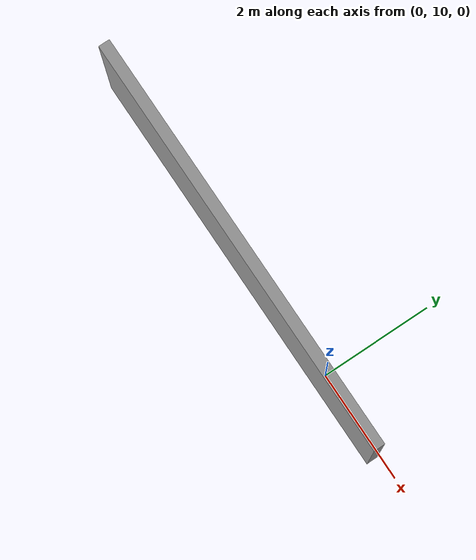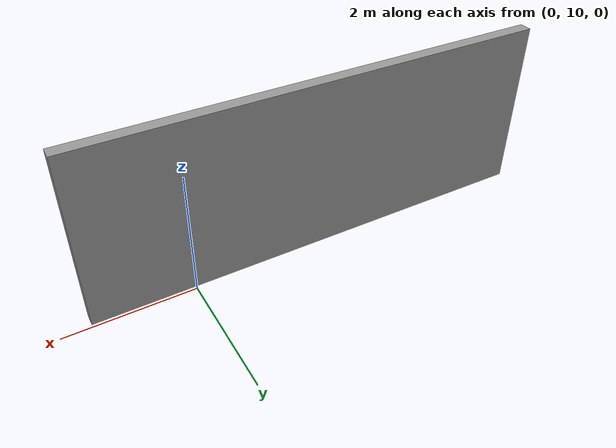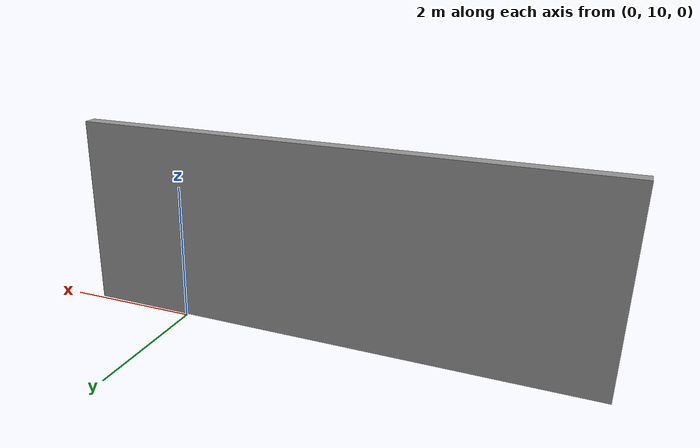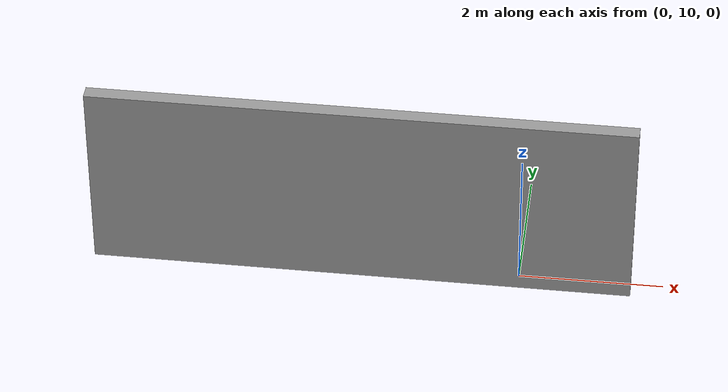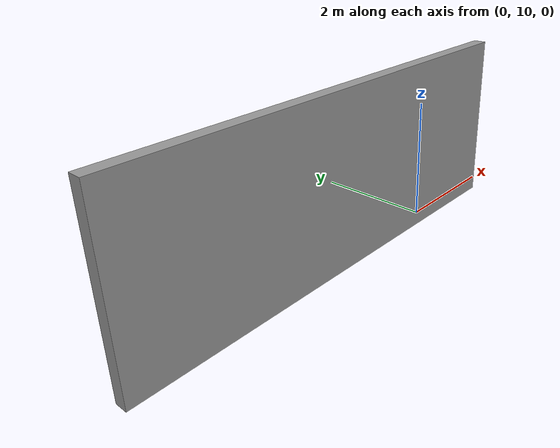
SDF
<sdf version="1.6">
 <world name="default">
  <model name="grey_wall">
   <static>1</static>
   <link name="link">
    <pose>0 0 1.4 0 -0 0</pose>
    <collision name="collision"><geometry><box><size>7.5 0.2 2.8</size></box></geometry></collision>
    <visual name="visual">
     <cast_shadows>0</cast_shadows>
     <geometry><box><size>7.5 0.2 2.8</size></box></geometry>
     <material>
      <script>
       <uri>model://grey_wall/materials/scripts</uri>
       <uri>model://grey_wall/materials/textures</uri>
       <name>vrc/grey_wall</name>
      </script>
     </material>
    </visual>
   </link>
   <pose>-2.19152 9.85272 0 0 -0 0</pose>
  </model>
 </world>
</sdf>
